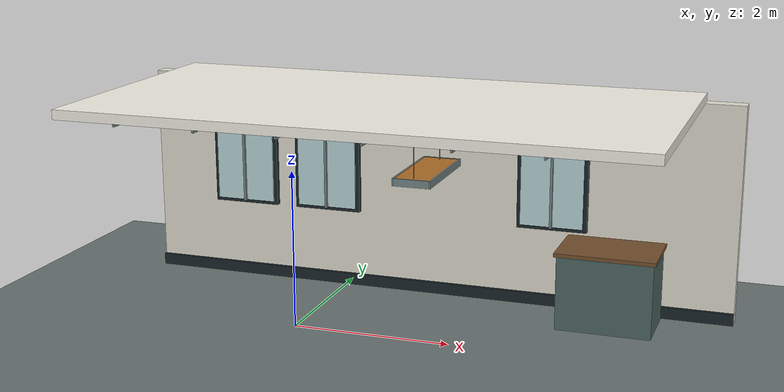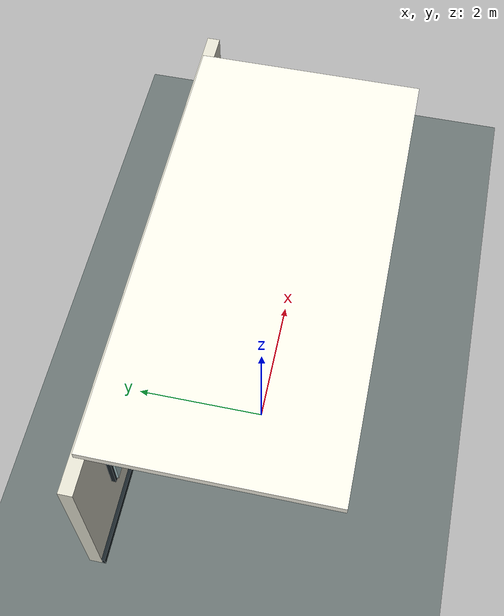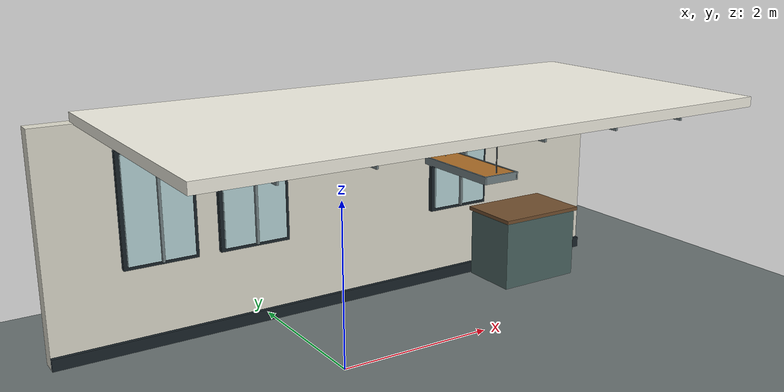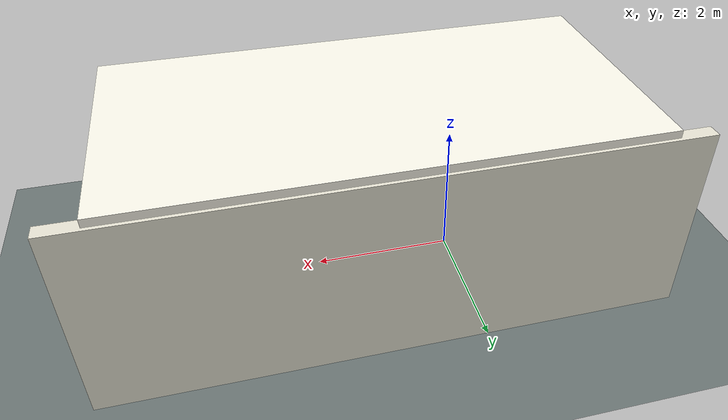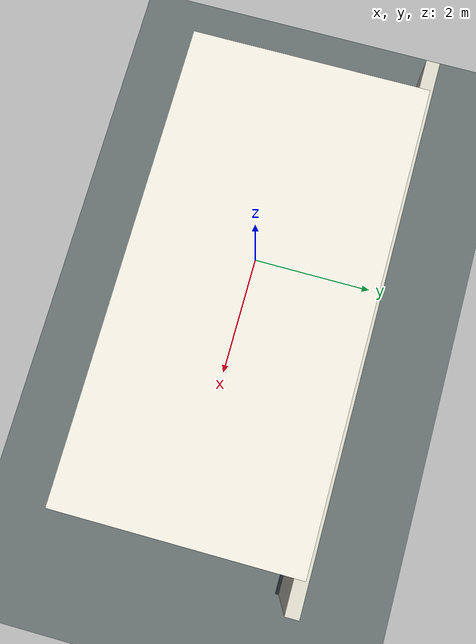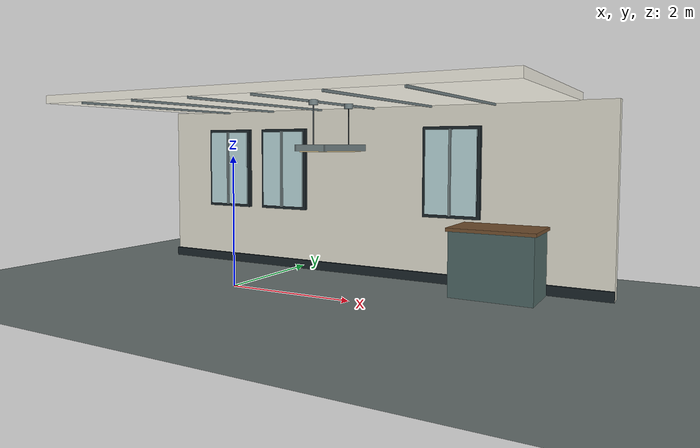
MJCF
<mujoco model="ceiling_fixture_room">
  <option iterations="60" ls_iterations="5" timestep=".002" integrator="implicitfast">
    </option>
  <visual>
    <global offwidth="1800" offheight="1200" />
    <quality shadowsize="4096" offsamples="4" />
    <headlight ambient=".36 .37 .38" diffuse=".70 .68 .63" specular=".08 .08 .08" />
    <map znear=".01" />
  </visual>
  <asset>
    <texture type="skybox" builtin="gradient" rgb1=".65 .72 .76" rgb2=".88 .90 .88" width="512" height="3072" />
    <texture name="stone_grid" type="2d" builtin="checker" rgb1=".63 .66 .66" rgb2=".60 .63 .64" width="512" height="512" />
    <material name="stone" rgba=".66 .69 .68 1" texture="stone_grid" texrepeat="7 5" reflectance="0" />
    <material name="plaster" rgba=".88 .87 .81 1" />
    <material name="ceiling" rgba=".96 .95 .90 1" />
    <material name="sage" rgba=".30 .40 .39 1" />
    <material name="oak" rgba=".45 .31 .18 1" />
    <material name="graphite" rgba=".10 .14 .16 1" />
    <material name="metal" rgba=".46 .52 .53 1" specular=".8" shininess=".7" />
    <material name="diffuser" rgba="1 .89 .64 1" emission=".5" />
    <material name="window" rgba=".72 .84 .85 1" emission=".14" />
    <material name="fixture_bronze" rgba=".68 .43 .15 1" specular=".35" shininess=".4" />
  </asset>
  <worldbody>
    <geom name="floor" type="plane" size="8 5 .1" material="stone" friction=".9 .01 .001" />
    <geom name="back_wall" type="box" pos="1.2 1.9 1.4" size="4 .10 1.4" material="plaster" />
    <geom name="back_skirting" type="box" pos="1.2 1.775 .075" size="4 .025 .075" material="graphite" />
    <geom type="box" pos="-1.45 1.755 1.75" size=".46 .035 .71" material="graphite" />
    <geom type="box" pos="-1.45 1.71 1.75" size=".41 .02 .66" material="window" contype="0" conaffinity="0" />
    <geom type="box" pos="-1.45 1.675 1.75" size=".016 .025 .67" material="metal" contype="0" conaffinity="0" />
    <geom type="box" pos="-0.25 1.755 1.75" size=".46 .035 .71" material="graphite" />
    <geom type="box" pos="-0.25 1.71 1.75" size=".41 .02 .66" material="window" contype="0" conaffinity="0" />
    <geom type="box" pos="-0.25 1.675 1.75" size=".016 .025 .67" material="metal" contype="0" conaffinity="0" />
    <geom type="box" pos="2.85 1.755 1.75" size=".46 .035 .71" material="graphite" />
    <geom type="box" pos="2.85 1.71 1.75" size=".41 .02 .66" material="window" contype="0" conaffinity="0" />
    <geom type="box" pos="2.85 1.675 1.75" size=".016 .025 .67" material="metal" contype="0" conaffinity="0" />
    <geom name="storage" type="box" pos="3.7 1.32 .48" size=".60 .40 .48" material="sage" />
    <geom name="storage_top" type="box" pos="3.7 1.32 .975" size=".63 .43 .025" material="oak" />
    <geom name="ceiling_panel" type="box" pos="1.2 .2 2.85" size="3.5 1.75 .06" material="ceiling" />
    <geom type="box" pos="-1.5 .2 2.775" size=".012 1.75 .018" material="metal" contype="0" conaffinity="0" />
    <geom type="box" pos="-0.5 .2 2.775" size=".012 1.75 .018" material="metal" contype="0" conaffinity="0" />
    <geom type="box" pos="0.5 .2 2.775" size=".012 1.75 .018" material="metal" contype="0" conaffinity="0" />
    <geom type="box" pos="1.5 .2 2.775" size=".012 1.75 .018" material="metal" contype="0" conaffinity="0" />
    <geom type="box" pos="2.5 .2 2.775" size=".012 1.75 .018" material="metal" contype="0" conaffinity="0" />
    <geom type="box" pos="3.5 .2 2.775" size=".012 1.75 .018" material="metal" contype="0" conaffinity="0" />
    <light name="daylight" pos="-.5 -2.8 4.0" dir=".2 .5 -1" directional="true" diffuse=".85 .89 .93" ambient=".13 .14 .15" castshadow="true" />
    <light name="warm_fill" pos="3 1.2 2.5" dir="-.5 -.4 -1" diffuse=".45 .39 .30" castshadow="false" />
    <light name="interior_fill" pos="-.8 -1.1 2.35" dir=".2 .2 -.7" diffuse=".7 .68 .60" ambient=".08 .08 .08" castshadow="false" />
    <body name="loose_fixture" pos="1.73 0 2.13" quat=".7071067811865476 0 0 .7071067811865476">
      <freejoint name="fixture_free" />
      <inertial pos="0 0 0" mass="3.2" diaginertia=".057 .28 .30" />
      <geom name="fixture_housing" type="box" size=".58 .23 .038" material="fixture_bronze" />
      <geom name="fixture_luminous_face" type="box" pos="0 0 -.044" size=".53 .19 .013" material="diffuser" mass="0" contype="0" conaffinity="0" />
      <geom type="box" pos="0 -0.223 0" size=".59 .010 .045" material="metal" mass="0" contype="0" conaffinity="0" />
      <geom type="box" pos="0 0.223 0" size=".59 .010 .045" material="metal" mass="0" contype="0" conaffinity="0" />
      <geom type="box" pos="-0.578 0 0" size=".010 .23 .045" material="metal" mass="0" contype="0" conaffinity="0" />
      <geom type="box" pos="0.578 0 0" size=".010 .23 .045" material="metal" mass="0" contype="0" conaffinity="0" />
      <site name="left_panel_anchor" pos="-0.49 0.0 0.04" size=".005" rgba="0 0 0 0" />
      <site name="right_panel_anchor" pos="0.49 0.0 0.04" size=".005" rgba="0 0 0 0" />
    </body>
    <camera name="scene_preview" pos="-2.5 -3.6 1.7" xyaxes="0.7474093186836597 -0.6643638388299198 0.0 0.065880573607152 0.07411564530804599 0.9950711638580251" fovy="54" />
    <geom name="left_mount" type="cylinder" pos="1.73 -0.49 2.73" size=".065 .035" material="metal" />
    <site name="left_ceiling_anchor" pos="1.73 -0.49 2.73" size=".005" rgba="0 0 0 0" />
    <geom name="left_remaining_wire_stub" type="capsule" fromto="1.73 -0.49 2.71 1.73 -0.49 2.58" size=".008" material="graphite" contype="0" conaffinity="0" />
    <geom name="right_mount" type="cylinder" pos="1.73 0.49 2.73" size=".065 .035" material="metal" />
    <site name="right_ceiling_anchor" pos="1.73 0.49 2.73" size=".005" rgba="0 0 0 0" />
    <geom name="right_remaining_wire_stub" type="capsule" fromto="1.73 0.49 2.71 1.73 0.49 2.58" size=".008" material="graphite" contype="0" conaffinity="0" />
  </worldbody>
  <equality>
    <connect name="left_attachment" body1="loose_fixture" anchor="-0.49 0.0 0.6" solref=".004 1" solimp=".95 .99 .001" />
    <connect name="right_attachment" body1="loose_fixture" anchor="0.49 0.0 0.6" solref=".004 1" solimp=".95 .99 .001" />
  </equality>
  <tendon>
    <spatial name="left_suspension_wire" width=".008" rgba=".11 .13 .14 1">
      <site site="left_ceiling_anchor" />
      <site site="left_panel_anchor" />
    </spatial>
    <spatial name="right_suspension_wire" width=".008" rgba=".11 .13 .14 1">
      <site site="right_ceiling_anchor" />
      <site site="right_panel_anchor" />
    </spatial>
  </tendon>
</mujoco>
